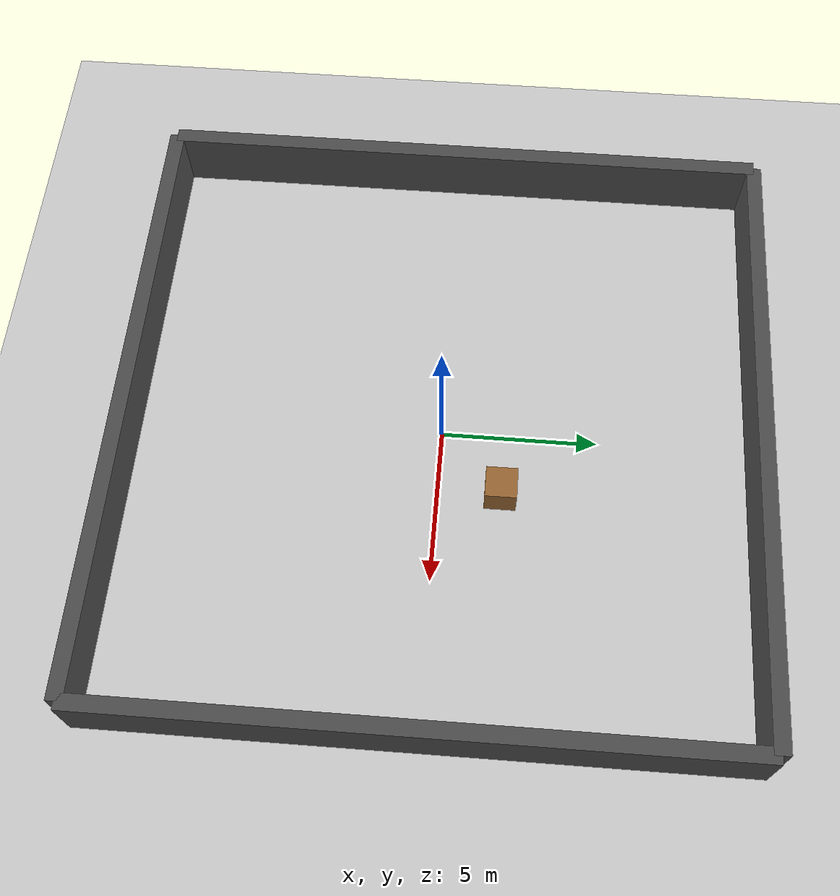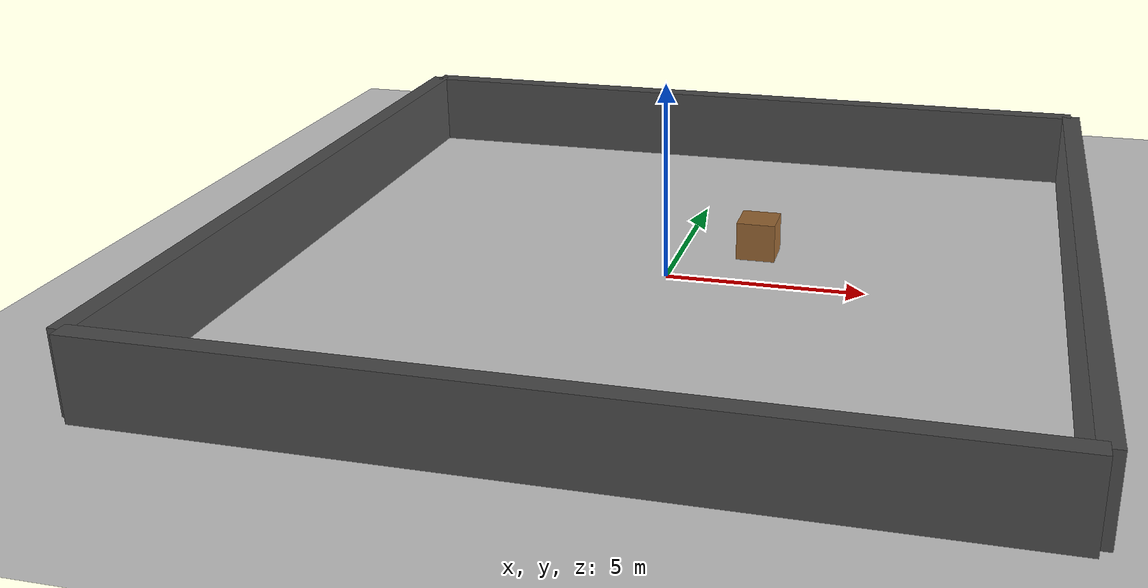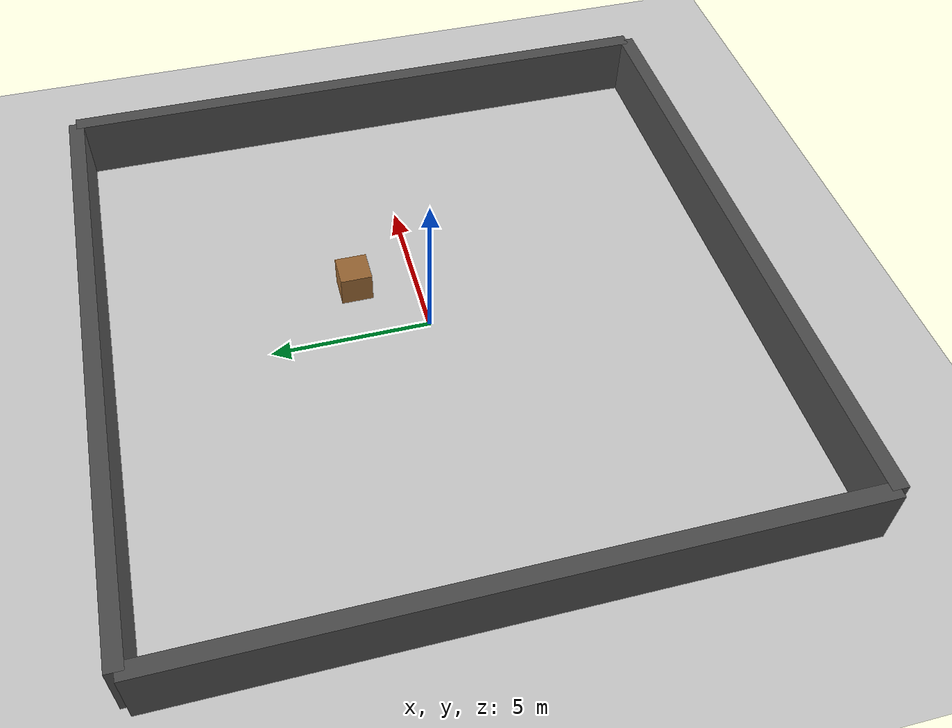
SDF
<?xml version="1.0" ?>
<sdf version="1.8">
  <world name="warehouse">
    <physics name="1ms" type="ignored">
      <max_step_size>0.001</max_step_size>
      <real_time_factor>1.0</real_time_factor>
    </physics>

    <!-- Base Plugins for Fortress -->
    <plugin filename="libignition-gazebo-physics-system.so" name="ignition::gazebo::systems::Physics"/>
    <plugin
      filename="libignition-gazebo-scene-broadcaster-system.so"
      name="ignition::gazebo::systems::SceneBroadcaster">
    </plugin>
    <plugin
      filename="libignition-gazebo-user-commands-system.so"
      name="ignition::gazebo::systems::UserCommands">
    </plugin>
    <plugin filename="libignition-gazebo-sensors-system.so" name="ignition::gazebo::systems::Sensors">
      <render_engine>ogre</render_engine>
    </plugin>
    <plugin filename="libignition-gazebo-imu-system.so" name="ignition::gazebo::systems::Imu"/>

    <light type="directional" name="sun">
      <cast_shadows>true</cast_shadows>
      <pose>0 0 10 0 0 0</pose>
      <diffuse>0.8 0.8 0.8 1</diffuse>
      <specular>0.2 0.2 0.2 1</specular>
      <attenuation>
        <range>1000</range>
        <constant>0.9</constant>
        <linear>0.01</linear>
        <quadratic>0.001</quadratic>
      </attenuation>
      <direction>-0.5 0.1 -0.9</direction>
    </light>

    <model name="ground_plane">
      <static>true</static>
      <link name="link">
        <collision name="collision">
          <geometry>
            <plane>
              <normal>0 0 1</normal>
              <size>100 100</size>
            </plane>
          </geometry>
        </collision>
        <visual name="visual">
          <geometry>
            <plane>
              <normal>0 0 1</normal>
              <size>100 100</size>
            </plane>
          </geometry>
          <material>
            <ambient>0.8 0.8 0.8 1</ambient>
            <diffuse>0.8 0.8 0.8 1</diffuse>
            <specular>0.8 0.8 0.8 1</specular>
          </material>
        </visual>
      </link>
    </model>

    <!-- Warehouse Walls -->
    <model name="wall_1">
      <pose>0 10 1 0 0 0</pose>
      <static>true</static>
      <link name="link">
        <collision name="collision"><geometry><box><size>20 0.5 2</size></box></geometry></collision>
        <visual name="visual"><geometry><box><size>20 0.5 2</size></box></geometry>
          <material><ambient>0.3 0.3 0.3 1</ambient></material>
        </visual>
      </link>
    </model>
    <model name="wall_2">
      <pose>0 -10 1 0 0 0</pose>
      <static>true</static>
      <link name="link">
        <collision name="collision"><geometry><box><size>20 0.5 2</size></box></geometry></collision>
        <visual name="visual"><geometry><box><size>20 0.5 2</size></box></geometry>
          <material><ambient>0.3 0.3 0.3 1</ambient></material>
        </visual>
      </link>
    </model>
    <model name="wall_3">
      <pose>10 0 1 0 0 1.5707</pose>
      <static>true</static>
      <link name="link">
        <collision name="collision"><geometry><box><size>20 0.5 2</size></box></geometry></collision>
        <visual name="visual"><geometry><box><size>20 0.5 2</size></box></geometry>
          <material><ambient>0.3 0.3 0.3 1</ambient></material>
        </visual>
      </link>
    </model>
    <model name="wall_4">
      <pose>-10 0 1 0 0 1.5707</pose>
      <static>true</static>
      <link name="link">
        <collision name="collision"><geometry><box><size>20 0.5 2</size></box></geometry></collision>
        <visual name="visual"><geometry><box><size>20 0.5 2</size></box></geometry>
          <material><ambient>0.3 0.3 0.3 1</ambient></material>
        </visual>
      </link>
    </model>

    <!-- Inner obstacles (Pallets/Boxes) -->
    <model name="box_1">
      <pose>2 2 0.5 0 0 0</pose>
      <static>true</static>
      <link name="link">
        <collision name="collision"><geometry><box><size>1 1 1</size></box></geometry></collision>
        <visual name="visual"><geometry><box><size>1 1 1</size></box></geometry>
          <material><ambient>0.6 0.4 0.2 1</ambient></material>
        </visual>
      </link>
    </model>

  </world>
</sdf>
